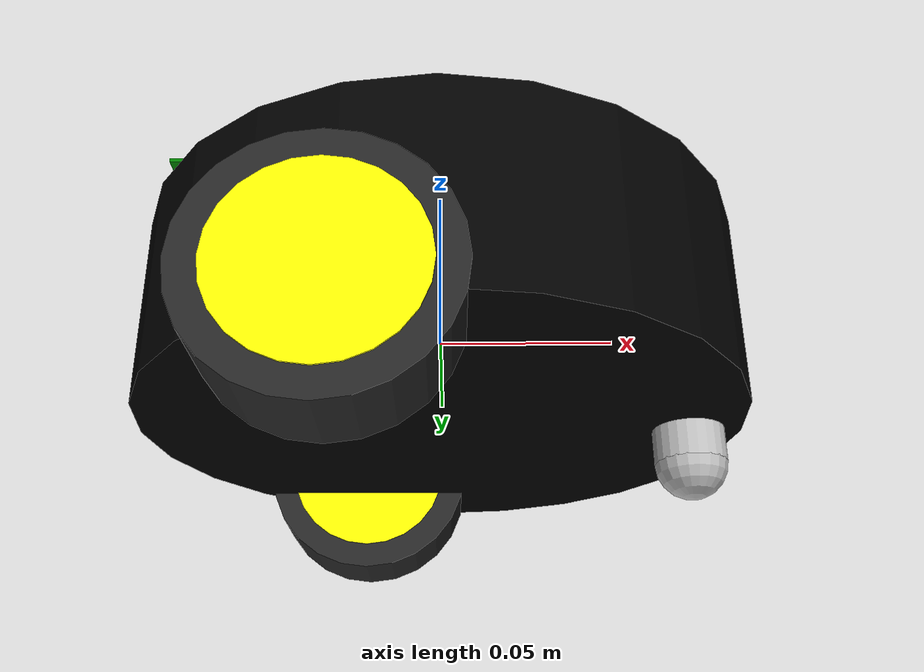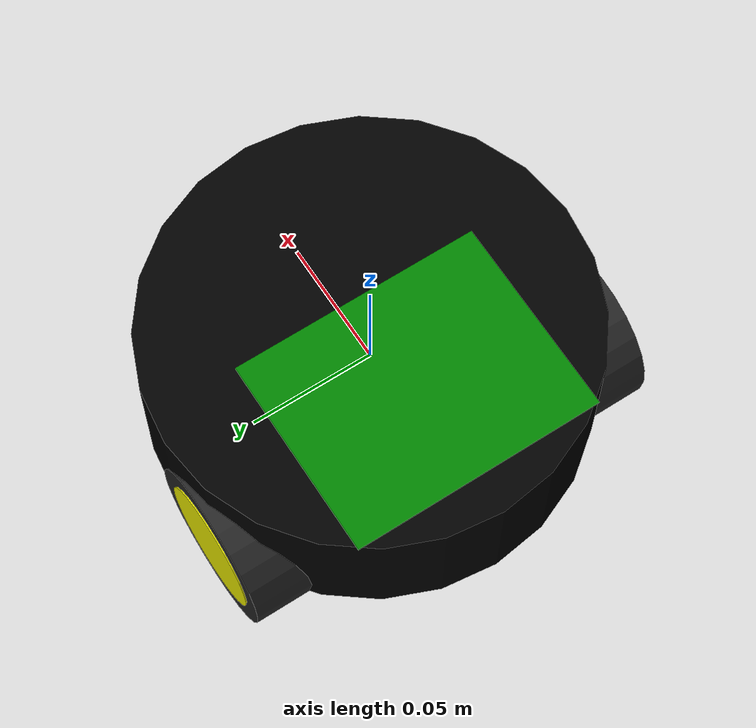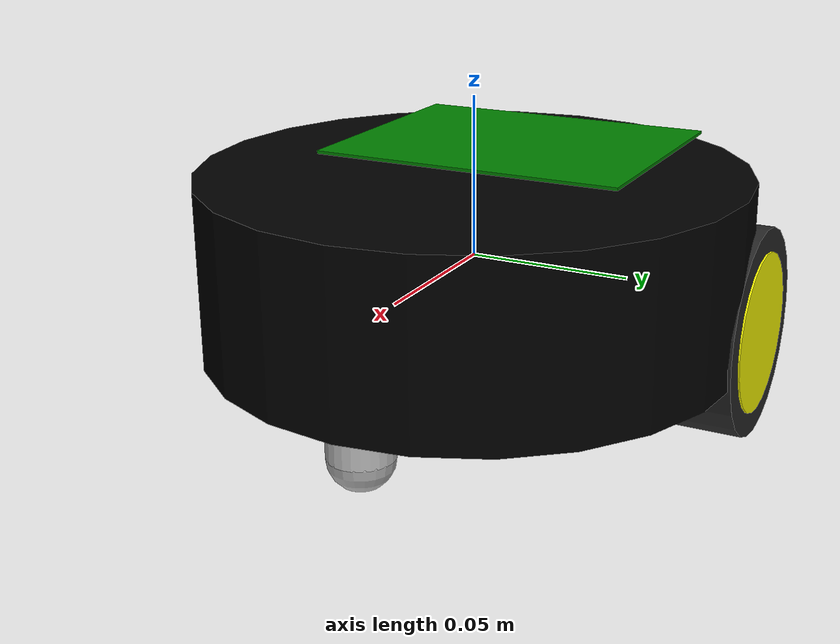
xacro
<?xml version="1.0"?>
<robot xmlns:xacro="http://www.ros.org/wiki/xacro" name="dfrobot_turtle">

  <xacro:include filename="$(find dfrobot_robots)/urdf/common.xacro" />

  <xacro:property name="base_plate_radius" value="0.085" />
  <xacro:property name="base_plate_height" value="0.055" />
  <xacro:property name="caster_ball_radius" value="0.01" />

  <link name="base_link">
    <visual>
      <geometry>
        <cylinder length="${base_plate_height}" radius="${base_plate_radius}"/>
      </geometry>
      <material name="black"/>
    </visual>
    <collision>
      <geometry>
        <cylinder length="${base_plate_height}" radius="${base_plate_radius}"/>
      </geometry>
    </collision>
    <inertial>
      <mass value="0.3"/>
      <inertia ixx="0.01" ixy="0.0" ixz="0.0" iyy="0.01" iyz="0.0" izz="0.01"/>
    </inertial>
  </link>

  <gazebo reference="base_link">
    <material>Gazebo/Black</material>
  </gazebo>

  <joint name="controlboard_to_base_joint" type="fixed">
    <parent link="base_link"/>
    <child link="control_board"/>
    <origin rpy="0 0 0" xyz="-0.03 0 ${base_plate_height/2 + 0.002}"/>
  </joint>

  <xacro:wheel suffix="right" parent="base_link" >
    <origin rpy="${-pi/2}  0 0" xyz="-0.025 ${-1*(base_plate_radius-wheel_width/2)} ${-2*caster_ball_radius}"/>
  </xacro:wheel>
  <xacro:wheel suffix="left"  parent="base_link">
    <origin rpy="${-pi/2} 0 0" xyz="-0.025 ${(base_plate_radius-wheel_width/2)}    ${-2*caster_ball_radius}"/>
  </xacro:wheel>

  <link name="caster_housing">
    <visual>
      <geometry>
          <cylinder length="${caster_ball_radius}" radius="${caster_ball_radius}"/>
      </geometry>
      <material name="silver"/>
    </visual>
    <collision>
      <geometry>
          <cylinder length="${caster_ball_radius}" radius="${caster_ball_radius}"/>
      </geometry>
    </collision>
    <inertial>
      <mass value="0.1"/>
      <inertia ixx="1e-6" ixy="0" ixz="0" iyy="1e-6" iyz="0" izz="1e-6" />
    </inertial>
  </link>

  <gazebo reference="caster_housing">
    <material>Gazebo/Grey</material>
  </gazebo>

  <joint name="base_to_caster_housing_joint" type="fixed">
      <parent link="base_link"/>
      <child link="caster_housing"/>
      <origin rpy="0 0 0" xyz="${base_plate_radius-caster_ball_radius-0.005} 0 ${-base_plate_height/2 - caster_ball_radius/2}"/>
  </joint>

  <link name="caster_ball">
    <visual>
      <geometry>
        <sphere radius="${caster_ball_radius}"/>
      </geometry>
      <material name="silver"/>
    </visual>
    <collision>
      <geometry>
        <sphere radius="${caster_ball_radius}"/>
      </geometry>
    </collision>
    <inertial>
      <mass value="0.1"/>
      <inertia ixx="1e-6" ixy="0" ixz="0" iyy="1e-6" iyz="0" izz="1e-6" />
    </inertial>
  </link>

  <gazebo reference="caster_ball">
    <material>Gazebo/Grey</material>
  </gazebo>

  <joint name="base_to_caster_ball_joint" type="continuous">
      <parent link="caster_housing"/>
      <child link="caster_ball"/>
      <axis xyz="0 1 0"/>
      <origin rpy="0 0 0" xyz="0 0 ${-caster_ball_radius/2}"/>
  </joint>

</robot>

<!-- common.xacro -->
<robot xmlns:xacro="http://www.ros.org/wiki/xacro">

  <xacro:include filename="$(find dfrobot_robots)/urdf/materials.xacro" />

  <!-- Wheels -->
  <xacro:property name="wheel_radius" value="0.0325" />
  <xacro:property name="wheel_rim_radius" value="0.025" />
  <xacro:property name="wheel_width" value="0.025" />

  <xacro:macro name="wheel" params="suffix parent *origin">
    <link name="wheel_${suffix}">
      <visual>
        <geometry>
          <cylinder length="${wheel_width}" radius="${wheel_radius}"/>
        </geometry>
        <material name="rubber"/>
      </visual>
      <collision>
        <geometry>
          <cylinder length="${wheel_width}" radius="${wheel_radius}"/>
        </geometry>
      </collision>
      <inertial>
        <mass value="0.2"/>
        <inertia ixx="1e-6" ixy="0" ixz="0" iyy="1e-6" iyz="0" izz="1e-6" />
      </inertial>
    </link>

    <gazebo reference="wheel_${suffix}">
      <mu1 value="200.0"/>
      <mu2 value="100.0"/>
      <kp value="10000000.0" />
      <kd value="1.0" />
      <material>Gazebo/DarkGrey</material>
    </gazebo>

    <joint name="base_to_wheel_${suffix}_joint" type="continuous">
      <parent link="${parent}"/>
      <child link="wheel_${suffix}"/>
      <axis xyz="0 0 1"/>
      <xacro:insert_block name="origin" />
    </joint>

    <transmission name="wheel_${suffix}_trans">
      <type>transmission_interface/SimpleTransmission</type>
      <actuator name="wheel_${suffix}_motor">
        <mechanicalReduction>1</mechanicalReduction>
      </actuator>
      <joint name="base_to_wheel_${suffix}_joint">
        <hardwareInterface>hardware_interface/VelocityJointInterface</hardwareInterface>
      </joint>
    </transmission>

    <link name="wheel_rim_${suffix}">
      <visual>
        <geometry>
          <cylinder length="${0.001+wheel_width}" radius="${wheel_rim_radius}"/>
        </geometry>
        <material name="yellow"/>
      </visual>
      <inertial>
        <mass value="0.1"/>
        <inertia ixx="1e-6" ixy="0" ixz="0" iyy="1e-6" iyz="0" izz="1e-6" />
      </inertial>
    </link>

    <gazebo reference="wheel_rim_${suffix}">
      <material>Gazebo/Yellow</material>
    </gazebo>

    <joint name="wheel_${suffix}_to_rim_joint" type="fixed">
      <parent link="wheel_${suffix}"/>
      <child link="wheel_rim_${suffix}"/>
      <origin rpy="0 0 0" xyz="0 0 0"/>
    </joint>

  </xacro:macro>

  <!-- Control board -->
  <link name="control_board">
    <visual>
      <geometry>
        <box size="0.08 0.1 0.001"/>
      </geometry>
      <material name="green"/>
    </visual>
    <inertial>
      <mass value="0.1"/>
      <inertia ixx="1e-6" ixy="0" ixz="0" iyy="1e-6" iyz="0" izz="1e-6" />
    </inertial>
  </link>

  <gazebo reference="control_board">
    <material>Gazebo/Green</material>
  </gazebo>

  <!-- ros_control plugin -->
  <gazebo>
    <plugin name="gazebo_ros_control" filename="libgazebo_ros_control.so">
      <robotSimType>gazebo_ros_control/DefaultRobotHWSim</robotSimType>
    </plugin>
  </gazebo>

</robot>

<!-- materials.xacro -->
<robot>

 <material name="black">
    <color rgba="0 0 0 1"/>
  </material>

  <material name="yellow">
    <color rgba="1 1 0 1"/>
  </material>

  <material name="green">
    <color rgba="0 0.5 0 1"/>
  </material>

  <material name="silver">
    <color rgba="0.75 0.75 0.75 1"/>
  </material>
  <material name="rubber">
    <color rgba="0.15 0.15 0.15 1"/>
  </material>

</robot>
